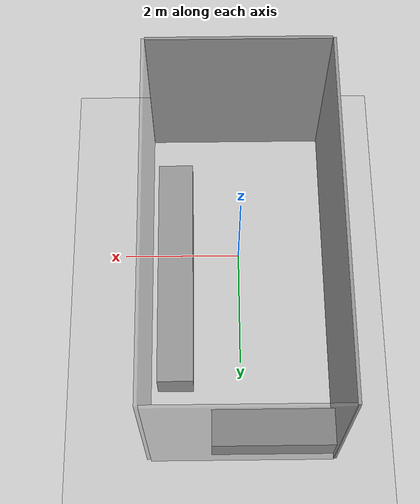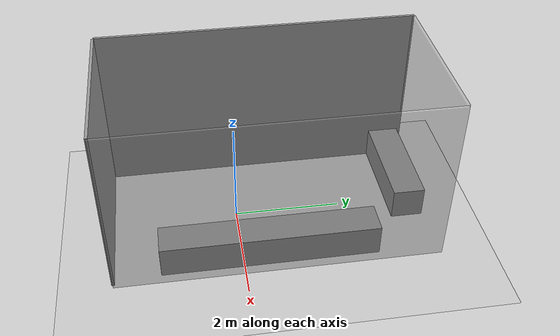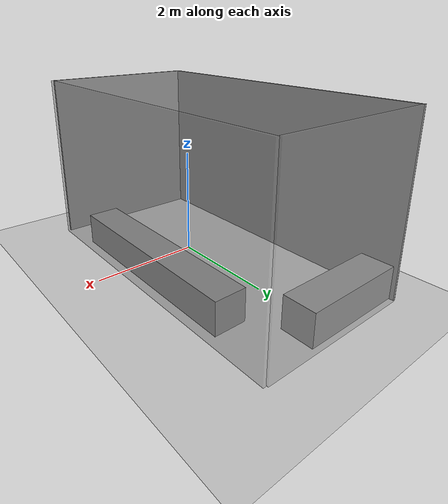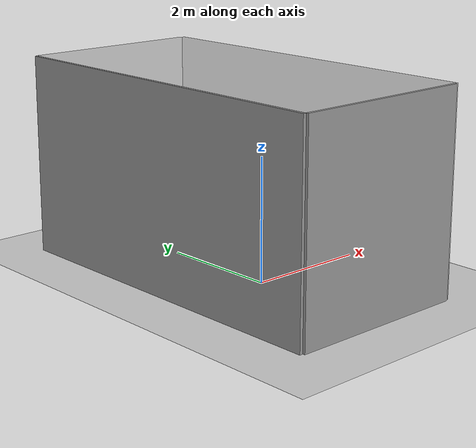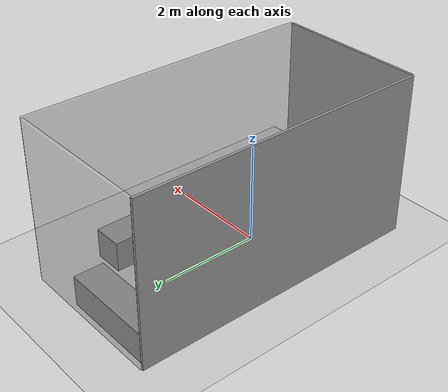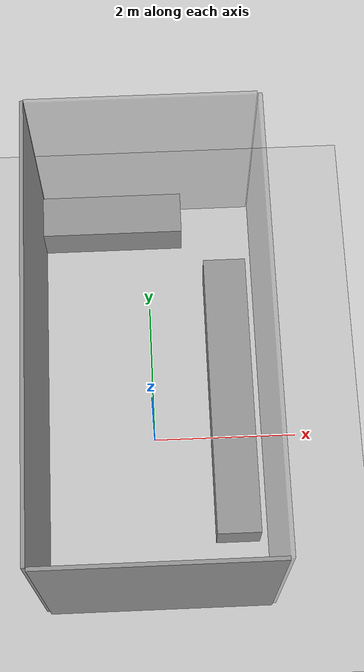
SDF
<sdf version="1.6">
 <world name="default">
  <light name="sun" type="directional">
   <pose>0 0 10 0 -0 0</pose>
   <diffuse>0.8 0.8 0.8 1</diffuse>
   <specular>0.1 0.1 0.1 1</specular>
   <attenuation>
    <range>1000</range>
    <constant>0.9</constant>
    <linear>0.01</linear>
    <quadratic>0.001</quadratic>
   </attenuation>
   <direction>-0.5 0.5 -1</direction>
  </light>
  <model name="ground_plane">
   <static>1</static>
   <link name="link">
    <collision name="collision">
     <geometry><plane><normal>0 0 1</normal><size>100 100</size></plane></geometry>
     <surface><friction><ode><mu>100</mu><mu2>50</mu2></ode></friction></surface>
    </collision>
    <visual name="visual">
     <cast_shadows>0</cast_shadows>
     <geometry><plane><normal>0 0 1</normal><size>100 100</size></plane></geometry>
     <material>
      <script><uri>file://media/materials/scripts/gazebo.material</uri><name>Gazebo/Grey</name></script>
     </material>
    </visual>
   </link>
  </model>
  <gravity>0 0 -9.8</gravity>
  <magnetic_field>6e-06 2.3e-05 -4.2e-05</magnetic_field>
  <atmosphere type="adiabatic"/>
  <physics name="default_physics" default="0" type="ode">
   <max_step_size>0.001</max_step_size>
   <real_time_factor>1</real_time_factor>
   <real_time_update_rate>1000</real_time_update_rate>
  </physics>
  <scene><ambient>0.4 0.4 0.4 1</ambient><background>0.7 0.7 0.7 1</background><shadows>1</shadows></scene>
  <spherical_coordinates>
   <surface_model>EARTH_WGS84</surface_model>
   <latitude_deg>0</latitude_deg>
   <longitude_deg>0</longitude_deg>
   <elevation>0</elevation>
   <heading_deg>0</heading_deg>
  </spherical_coordinates>
  <model name="Table1">
   <link name="link_1">
    <pose>-1e-06 4e-06 0 0 -0 0</pose>
    <inertial>
     <mass>1.73811</mass>
     <inertia><ixx>2.4298</ixx><ixy>0</ixy><ixz>0</ixz><iyy>0.124776</iyy><iyz>0</iyz><izz>2.42362</izz></inertia>
    </inertial>
    <visual name="visual">
     <geometry><box><size>0.6 4 0.6</size></box></geometry>
     <material>
      <lighting>1</lighting>
      <script><uri>file://media/materials/scripts/gazebo.material</uri><name>Gazebo/Grey</name></script>
      <ambient>0.3 0.3 0.3 1</ambient>
      <diffuse>0.7 0.7 0.7 1</diffuse>
      <specular>0.01 0.01 0.01 1</specular>
      <emissive>0 0 0 1</emissive>
      <shader type="vertex"><normal_map>__default__</normal_map></shader>
     </material>
    </visual>
    <collision name="collision">
     <geometry><box><size>0.6 4 0.6</size></box></geometry>
     <surface>
      <friction>
       <ode><mu>1</mu><mu2>1</mu2><fdir1>0 0 0</fdir1><slip1>0</slip1><slip2>0</slip2></ode>
       <torsional>
        <coefficient>1</coefficient>
        <patch_radius>0</patch_radius>
        <surface_radius>0</surface_radius>
        <use_patch_radius>1</use_patch_radius>
        <ode><slip>0</slip></ode>
       </torsional>
      </friction>
      <bounce><restitution_coefficient>0</restitution_coefficient><threshold>1e+06</threshold></bounce>
      <contact>
       <collide_without_contact>0</collide_without_contact>
       <collide_without_contact_bitmask>1</collide_without_contact_bitmask>
       <collide_bitmask>1</collide_bitmask>
       <ode>
        <soft_cfm>0</soft_cfm>
        <soft_erp>0.2</soft_erp>
        <kp>1e+13</kp>
        <kd>1</kd>
        <max_vel>0.01</max_vel>
        <min_depth>0</min_depth>
       </ode>
       <bullet>
        <split_impulse>1</split_impulse>
        <split_impulse_penetration_threshold>-0.01</split_impulse_penetration_threshold>
        <soft_cfm>0</soft_cfm>
        <soft_erp>0.2</soft_erp>
        <kp>1e+13</kp>
        <kd>1</kd>
       </bullet>
      </contact>
     </surface>
    </collision>
   </link>
   <static>0</static>
   <pose>1.1 0.492647 0.3 0 2e-06 0</pose>
  </model>
  <light name="user_point_light_0" type="point">
   <pose>1.54229 3.11267 1 0 -0 0</pose>
   <diffuse>0.5 0.5 0.5 1</diffuse>
   <specular>0.1 0.1 0.1 1</specular>
   <attenuation>
    <range>20</range>
    <constant>0.5</constant>
    <linear>0.01</linear>
    <quadratic>0.001</quadratic>
   </attenuation>
   <cast_shadows>0</cast_shadows>
   <direction>0 0 -1</direction>
  </light>
  <model name="Table2">
   <link name="link_2">
    <pose>-1e-06 4e-06 0 0 -0 0</pose>
    <inertial>
     <mass>0.507157</mass>
     <inertia>
      <ixx>0.019303</ixx>
      <ixy>0</ixy>
      <ixz>0</ixz>
      <iyy>0.219715</iyy>
      <iyz>0</iyz>
      <izz>0.218404</izz>
     </inertia>
    </inertial>
    <visual name="visual">
     <geometry><box><size>2 0.6 0.6</size></box></geometry>
     <material>
      <lighting>1</lighting>
      <script><uri>file://media/materials/scripts/gazebo.material</uri><name>Gazebo/Grey</name></script>
      <ambient>0.3 0.3 0.3 1</ambient>
      <diffuse>0.7 0.7 0.7 1</diffuse>
      <specular>0.01 0.01 0.01 1</specular>
      <emissive>0 0 0 1</emissive>
      <shader type="vertex"><normal_map>__default__</normal_map></shader>
     </material>
    </visual>
    <collision name="collision">
     <geometry><box><size>2 0.6 0.6</size></box></geometry>
     <surface>
      <friction>
       <ode><mu>1</mu><mu2>1</mu2><fdir1>0 0 0</fdir1><slip1>0</slip1><slip2>0</slip2></ode>
       <torsional>
        <coefficient>1</coefficient>
        <patch_radius>0</patch_radius>
        <surface_radius>0</surface_radius>
        <use_patch_radius>1</use_patch_radius>
        <ode><slip>0</slip></ode>
       </torsional>
      </friction>
      <bounce><restitution_coefficient>0</restitution_coefficient><threshold>1e+06</threshold></bounce>
      <contact>
       <collide_without_contact>0</collide_without_contact>
       <collide_without_contact_bitmask>1</collide_without_contact_bitmask>
       <collide_bitmask>1</collide_bitmask>
       <ode>
        <soft_cfm>0</soft_cfm>
        <soft_erp>0.2</soft_erp>
        <kp>1e+13</kp>
        <kd>1</kd>
        <max_vel>0.01</max_vel>
        <min_depth>0</min_depth>
       </ode>
       <bullet>
        <split_impulse>1</split_impulse>
        <split_impulse_penetration_threshold>-0.01</split_impulse_penetration_threshold>
        <soft_cfm>0</soft_cfm>
        <soft_erp>0.2</soft_erp>
        <kp>1e+13</kp>
        <kd>1</kd>
       </bullet>
      </contact>
     </surface>
    </collision>
   </link>
   <static>0</static>
   <pose>-0.493957 3.26973 0.299995 1.6e-05 -0 1e-06</pose>
  </model>
  <model name="mocap_walls_1">
   <link name="link">
    <pose>-0.018962 0.645107 0 0 -0 0</pose>
    <inertial>
     <mass>1</mass>
     <inertia>
      <ixx>0.166667</ixx>
      <ixy>0</ixy>
      <ixz>0</ixz>
      <iyy>0.166667</iyy>
      <iyz>0</iyz>
      <izz>0.166667</izz>
     </inertia>
    </inertial>
    <visual name="visual">
     <geometry><box><size>0.05 6 3.5</size></box></geometry>
     <material>
      <script><name>Gazebo/Grey</name><uri>file://media/materials/scripts/gazebo.material</uri></script>
      <ambient>0.3 0.3 0.3 1</ambient>
      <diffuse>0.7 0.7 0.7 1</diffuse>
      <specular>0.01 0.01 0.01 1</specular>
      <emissive>0 0 0 1</emissive>
      <shader type="vertex"><normal_map>__default__</normal_map></shader>
     </material>
    </visual>
    <collision name="collision">
     <geometry><box><size>0.05 6 3.5</size></box></geometry>
     <surface>
      <friction>
       <ode><mu>1</mu><mu2>1</mu2><fdir1>0 0 0</fdir1><slip1>0</slip1><slip2>0</slip2></ode>
       <torsional>
        <coefficient>1</coefficient>
        <patch_radius>0</patch_radius>
        <surface_radius>0</surface_radius>
        <use_patch_radius>1</use_patch_radius>
        <ode><slip>0</slip></ode>
       </torsional>
      </friction>
      <bounce><restitution_coefficient>0</restitution_coefficient><threshold>1e+06</threshold></bounce>
      <contact>
       <collide_without_contact>0</collide_without_contact>
       <collide_without_contact_bitmask>1</collide_without_contact_bitmask>
       <collide_bitmask>1</collide_bitmask>
       <ode>
        <soft_cfm>0</soft_cfm>
        <soft_erp>0.2</soft_erp>
        <kp>1e+13</kp>
        <kd>1</kd>
        <max_vel>0.01</max_vel>
        <min_depth>0</min_depth>
       </ode>
       <bullet>
        <split_impulse>1</split_impulse>
        <split_impulse_penetration_threshold>-0.01</split_impulse_penetration_threshold>
        <soft_cfm>0</soft_cfm>
        <soft_erp>0.2</soft_erp>
        <kp>1e+13</kp>
        <kd>1</kd>
       </bullet>
      </contact>
     </surface>
    </collision>
   </link>
   <link name="link_0">
    <pose>1.51345 -2.36644 0 0 -0 0</pose>
    <inertial>
     <mass>1.15428</mass>
     <inertia><ixx>1.16492</ixx><ixy>0</ixy><ixz>0</ixz><iyy>2.04632</iyy><iyz>0</iyz><izz>0.883707</izz></inertia>
    </inertial>
    <visual name="visual">
     <geometry><box><size>3 0.05 3.5</size></box></geometry>
     <material>
      <lighting>1</lighting>
      <script><uri>file://media/materials/scripts/gazebo.material</uri><name>Gazebo/Grey</name></script>
      <ambient>0.3 0.3 0.3 1</ambient>
      <diffuse>0.7 0.7 0.7 1</diffuse>
      <specular>0.01 0.01 0.01 1</specular>
      <emissive>0 0 0 1</emissive>
      <shader type="vertex"><normal_map>__default__</normal_map></shader>
     </material>
    </visual>
    <collision name="collision">
     <geometry><box><size>3 0.05 3.5</size></box></geometry>
     <surface>
      <friction>
       <ode><mu>1</mu><mu2>1</mu2><fdir1>0 0 0</fdir1><slip1>0</slip1><slip2>0</slip2></ode>
       <torsional>
        <coefficient>1</coefficient>
        <patch_radius>0</patch_radius>
        <surface_radius>0</surface_radius>
        <use_patch_radius>1</use_patch_radius>
        <ode><slip>0</slip></ode>
       </torsional>
      </friction>
      <bounce><restitution_coefficient>0</restitution_coefficient><threshold>1e+06</threshold></bounce>
      <contact>
       <collide_without_contact>0</collide_without_contact>
       <collide_without_contact_bitmask>1</collide_without_contact_bitmask>
       <collide_bitmask>1</collide_bitmask>
       <ode>
        <soft_cfm>0</soft_cfm>
        <soft_erp>0.2</soft_erp>
        <kp>1e+13</kp>
        <kd>1</kd>
        <max_vel>0.01</max_vel>
        <min_depth>0</min_depth>
       </ode>
       <bullet>
        <split_impulse>1</split_impulse>
        <split_impulse_penetration_threshold>-0.01</split_impulse_penetration_threshold>
        <soft_cfm>0</soft_cfm>
        <soft_erp>0.2</soft_erp>
        <kp>1e+13</kp>
        <kd>1</kd>
       </bullet>
      </contact>
     </surface>
    </collision>
   </link>
   <link name="link_0_clone">
    <pose>1.50145 3.63927 0 0 -0 0</pose>
    <inertial>
     <mass>1.15428</mass>
     <inertia><ixx>1.16492</ixx><ixy>0</ixy><ixz>0</ixz><iyy>2.04632</iyy><iyz>0</iyz><izz>0.883707</izz></inertia>
    </inertial>
    <visual name="ModelPreview_4::link_0_clone::visual_1">
     <geometry><box><size>3 0.05 3.5</size></box></geometry>
     <material>
      <lighting>1</lighting>
      <script><uri>file://media/materials/scripts/gazebo.material</uri><name>Gazebo/Grey</name></script>
      <ambient>0.3 0.3 0.3 1</ambient>
      <diffuse>0.7 0.7 0.7 1</diffuse>
      <specular>0.01 0.01 0.01 1</specular>
      <emissive>0 0 0 1</emissive>
      <shader type="vertex"><normal_map>__default__</normal_map></shader>
     </material>
     <transparency>0.6</transparency>
    </visual>
    <visual name="visual">
     <geometry><box><size>3 0.05 3.5</size></box></geometry>
     <material>
      <lighting>1</lighting>
      <script><uri>file://media/materials/scripts/gazebo.material</uri><name>Gazebo/Grey</name></script>
      <ambient>0.3 0.3 0.3 1</ambient>
      <diffuse>0.7 0.7 0.7 1</diffuse>
      <specular>0.01 0.01 0.01 1</specular>
      <emissive>0 0 0 1</emissive>
      <shader type="vertex"><normal_map>__default__</normal_map></shader>
     </material>
     <transparency>0.6</transparency>
    </visual>
    <collision name="collision">
     <geometry><box><size>3 0.05 3.5</size></box></geometry>
     <surface>
      <friction>
       <ode><mu>1</mu><mu2>1</mu2><fdir1>0 0 0</fdir1><slip1>0</slip1><slip2>0</slip2></ode>
       <torsional>
        <coefficient>1</coefficient>
        <patch_radius>0</patch_radius>
        <surface_radius>0</surface_radius>
        <use_patch_radius>1</use_patch_radius>
        <ode><slip>0</slip></ode>
       </torsional>
      </friction>
      <bounce><restitution_coefficient>0</restitution_coefficient><threshold>1e+06</threshold></bounce>
      <contact>
       <collide_without_contact>0</collide_without_contact>
       <collide_without_contact_bitmask>1</collide_without_contact_bitmask>
       <collide_bitmask>1</collide_bitmask>
       <ode>
        <soft_cfm>0</soft_cfm>
        <soft_erp>0.2</soft_erp>
        <kp>1e+13</kp>
        <kd>1</kd>
        <max_vel>0.01</max_vel>
        <min_depth>0</min_depth>
       </ode>
       <bullet>
        <split_impulse>1</split_impulse>
        <split_impulse_penetration_threshold>-0.01</split_impulse_penetration_threshold>
        <soft_cfm>0</soft_cfm>
        <soft_erp>0.2</soft_erp>
        <kp>1e+13</kp>
        <kd>1</kd>
       </bullet>
      </contact>
     </surface>
    </collision>
   </link>
   <link name="link_clone">
    <pose>3.04321 0.63619 0 0 -0 0</pose>
    <inertial>
     <mass>1</mass>
     <inertia>
      <ixx>0.166667</ixx>
      <ixy>0</ixy>
      <ixz>0</ixz>
      <iyy>0.166667</iyy>
      <iyz>0</iyz>
      <izz>0.166667</izz>
     </inertia>
    </inertial>
    <visual name="ModelPreview_4::link_clone::visual_1">
     <geometry><box><size>0.05 6 3.5</size></box></geometry>
     <material>
      <script><name>Gazebo/Grey</name><uri>file://media/materials/scripts/gazebo.material</uri></script>
      <ambient>0.3 0.3 0.3 1</ambient>
      <diffuse>0.7 0.7 0.7 1</diffuse>
      <specular>0.01 0.01 0.01 1</specular>
      <emissive>0 0 0 1</emissive>
      <shader type="vertex"><normal_map>__default__</normal_map></shader>
     </material>
     <transparency>0.6</transparency>
    </visual>
    <visual name="visual">
     <geometry><box><size>0.05 6 3.5</size></box></geometry>
     <material>
      <script><name>Gazebo/Grey</name><uri>file://media/materials/scripts/gazebo.material</uri></script>
      <ambient>0.3 0.3 0.3 1</ambient>
      <diffuse>0.7 0.7 0.7 1</diffuse>
      <specular>0.01 0.01 0.01 1</specular>
      <emissive>0 0 0 1</emissive>
      <shader type="vertex"><normal_map>__default__</normal_map></shader>
     </material>
     <transparency>0.6</transparency>
    </visual>
    <collision name="collision">
     <geometry><box><size>0.05 6 3.5</size></box></geometry>
     <surface>
      <friction>
       <ode><mu>1</mu><mu2>1</mu2><fdir1>0 0 0</fdir1><slip1>0</slip1><slip2>0</slip2></ode>
       <torsional>
        <coefficient>1</coefficient>
        <patch_radius>0</patch_radius>
        <surface_radius>0</surface_radius>
        <use_patch_radius>1</use_patch_radius>
        <ode><slip>0</slip></ode>
       </torsional>
      </friction>
      <bounce><restitution_coefficient>0</restitution_coefficient><threshold>1e+06</threshold></bounce>
      <contact>
       <collide_without_contact>0</collide_without_contact>
       <collide_without_contact_bitmask>1</collide_without_contact_bitmask>
       <collide_bitmask>1</collide_bitmask>
       <ode>
        <soft_cfm>0</soft_cfm>
        <soft_erp>0.2</soft_erp>
        <kp>1e+13</kp>
        <kd>1</kd>
        <max_vel>0.01</max_vel>
        <min_depth>0</min_depth>
       </ode>
       <bullet>
        <split_impulse>1</split_impulse>
        <split_impulse_penetration_threshold>-0.01</split_impulse_penetration_threshold>
        <soft_cfm>0</soft_cfm>
        <soft_erp>0.2</soft_erp>
        <kp>1e+13</kp>
        <kd>1</kd>
       </bullet>
      </contact>
     </surface>
    </collision>
   </link>
   <joint name="link_0_JOINT_0" type="fixed">
    <parent>link_0</parent>
    <child>link_clone</child>
    <physics>
     <ode><limit><cfm>0</cfm><erp>0.2</erp></limit><suspension><cfm>0</cfm><erp>0.2</erp></suspension></ode>
    </physics>
   </joint>
   <joint name="link_JOINT_2" type="fixed">
    <parent>link</parent>
    <child>link_0</child>
    <physics>
     <ode><limit><cfm>0</cfm><erp>0.2</erp></limit><suspension><cfm>0</cfm><erp>0.2</erp></suspension></ode>
    </physics>
   </joint>
   <joint name="link_clone_JOINT_1" type="fixed">
    <parent>link_clone</parent>
    <child>link_0_clone</child>
    <physics>
     <ode><limit><cfm>0</cfm><erp>0.2</erp></limit><suspension><cfm>0</cfm><erp>0.2</erp></suspension></ode>
    </physics>
   </joint>
   <static>1</static>
   <pose>-1.5 0 1.5 0 -0 0</pose>
  </model>
 </world>
</sdf>
